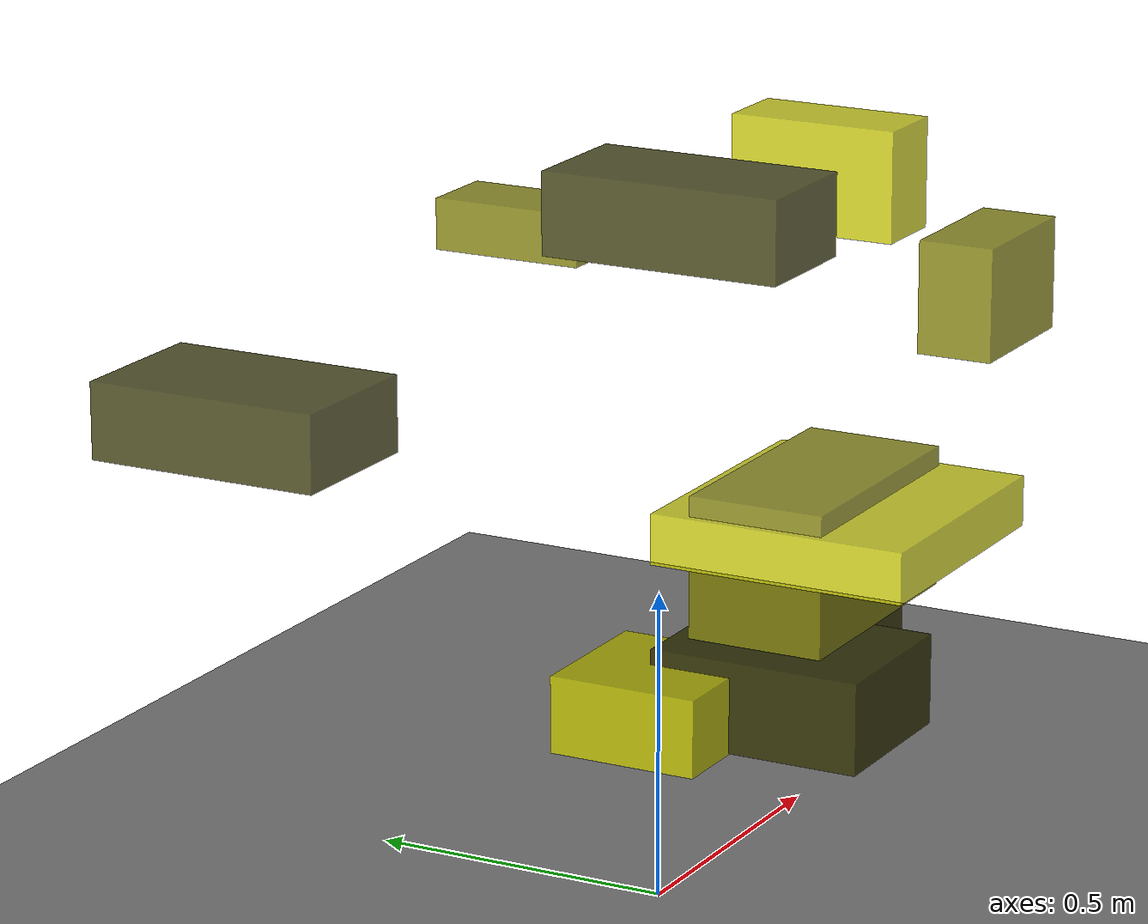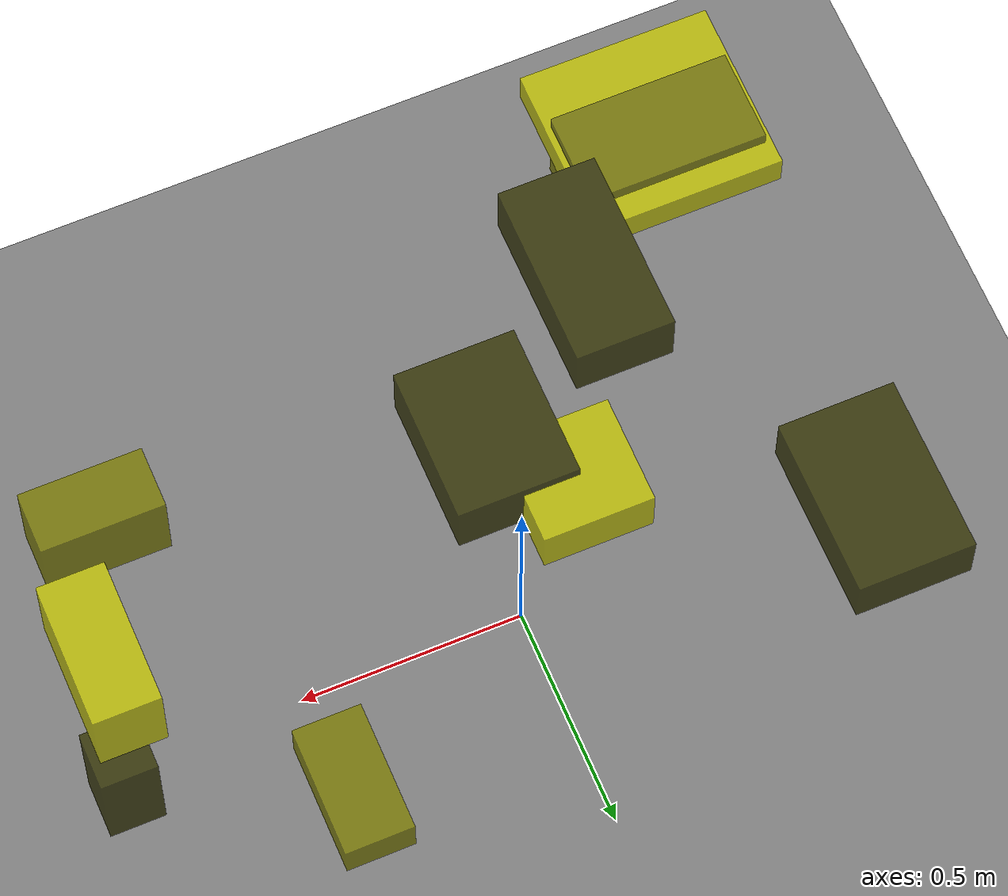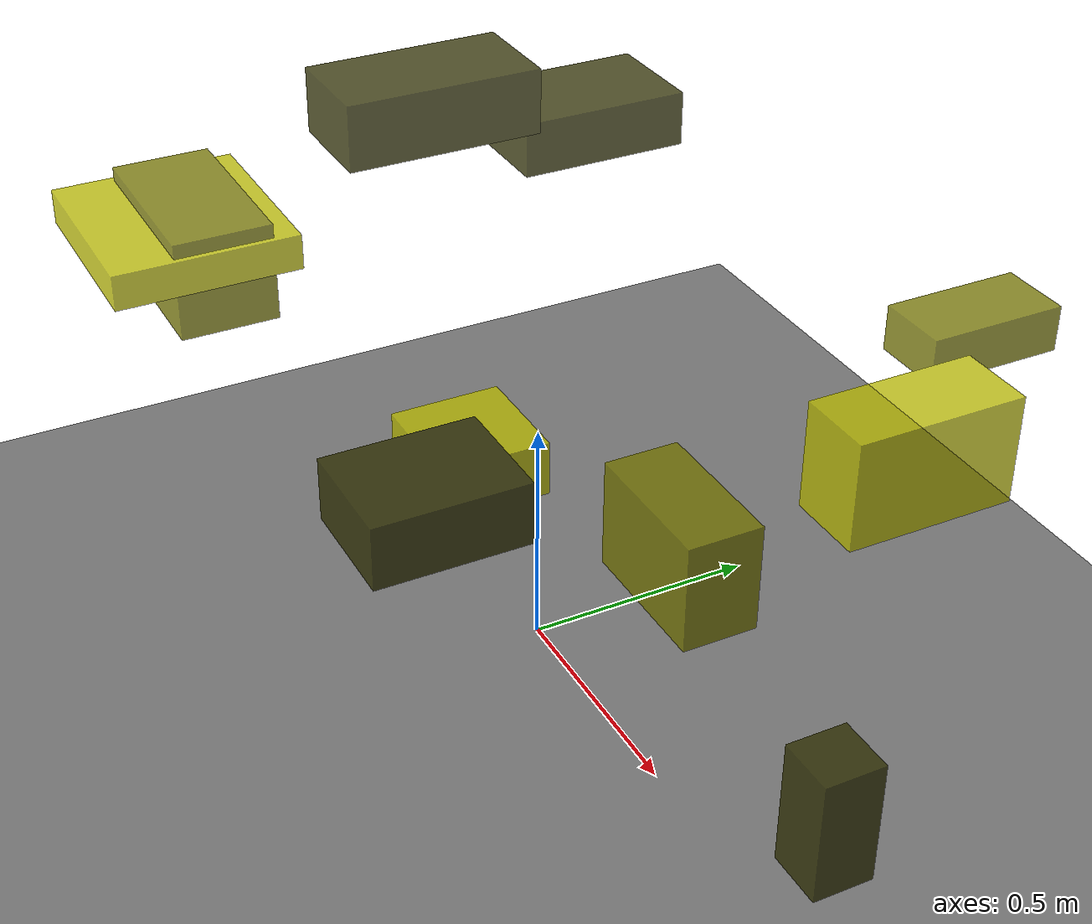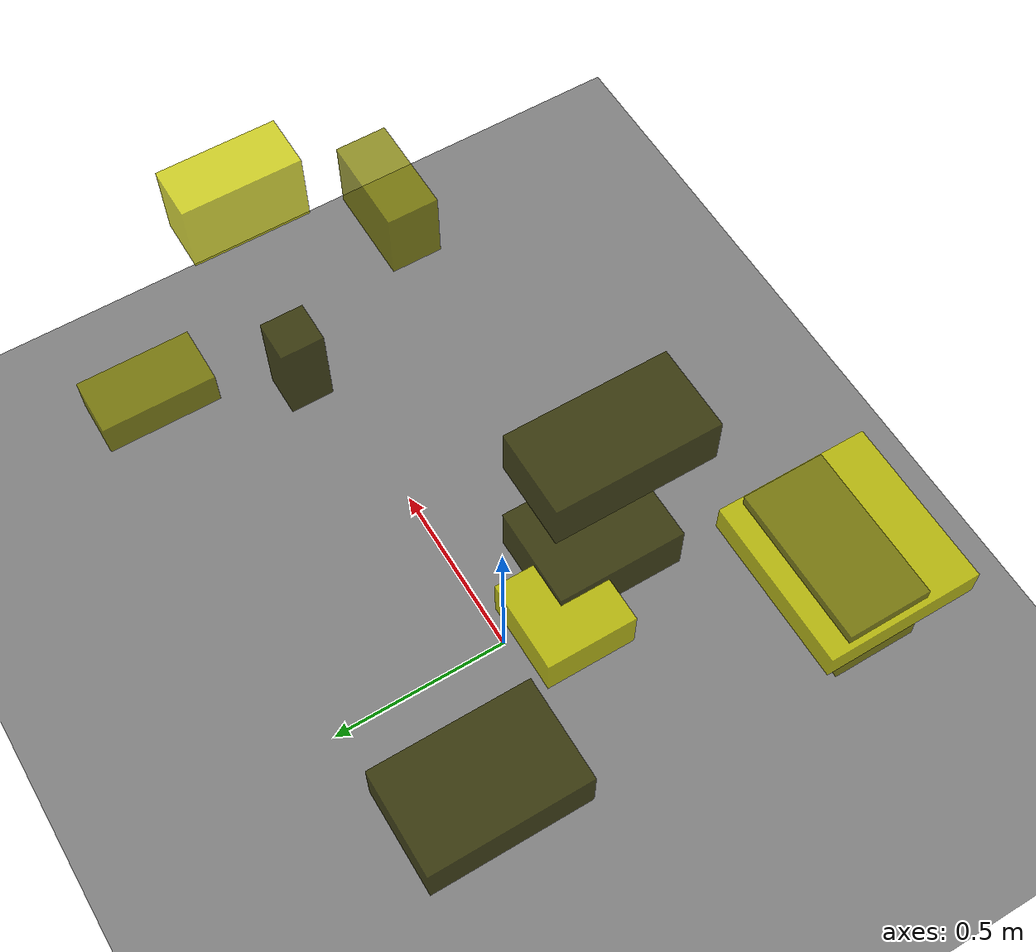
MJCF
<?xml version="1.0"?>
<mujoco model="obstacle_scene">
  <compiler angle="radian" coordinate="local"/>
  <option timestep="0.001" gravity="0 0 -9.81"/>

  <asset>
    <material name="obstacle_mat" rgba="0.8 0.8 0.0 0.8"/>
    <material name="ground_mat" rgba="0.5 0.5 0.5 1"/>
  </asset>

  <worldbody>
    <!-- Ground plane -->
    <geom name="ground" type="plane" size="3 3 0.1" material="ground_mat"/>

    <!-- Obstacles -->
    <body name="obstacle_0" pos="-0.189590 -0.144902 1.165757">
      <geom name="obs_0" type="box" size="0.100388 0.191724 0.064113" rgba="0.2 0.2 0.0 0.8"/>
    </body>
    <body name="obstacle_1" pos="0.583522 0.558394 0.897770">
      <geom name="obs_1" type="box" size="0.069964 0.134073 0.044183" rgba="0.5 0.5 0.0 0.8"/>
    </body>
    <body name="obstacle_2" pos="-0.154290 -0.079019 0.381984">
      <geom name="obs_2" type="box" size="0.122321 0.121331 0.061524" rgba="0.8 0.8 0.0 0.8"/>
    </body>
    <body name="obstacle_3" pos="-0.573576 0.389514 0.880336">
      <geom name="obs_3" type="box" size="0.122402 0.187960 0.059717" rgba="0.2 0.2 0.0 0.8"/>
    </body>
    <body name="obstacle_4" pos="0.827861 -0.178432 0.827237">
      <geom name="obs_4" type="box" size="0.128324 0.065330 0.095786" rgba="0.5 0.5 0.0 0.8"/>
    </body>
    <body name="obstacle_5" pos="-0.513040 -0.548414 0.844559">
      <geom name="obs_5" type="box" size="0.204575 0.189934 0.036808" rgba="0.8 0.8 0.0 0.8"/>
    </body>
    <body name="obstacle_6" pos="-0.022569 -0.238831 0.395046">
      <geom name="obs_6" type="box" size="0.134390 0.173093 0.072613" rgba="0.2 0.2 0.0 0.8"/>
    </body>
    <body name="obstacle_7" pos="-0.512336 -0.511515 0.807549">
      <geom name="obs_7" type="box" size="0.191061 0.100744 0.102849" rgba="0.5 0.5 0.0 0.8"/>
    </body>
    <body name="obstacle_8" pos="0.933269 0.164113 0.960582">
      <geom name="obs_8" type="box" size="0.068981 0.150433 0.096259" rgba="0.8 0.8 0.0 0.8"/>
    </body>
    <body name="obstacle_9" pos="0.921143 0.098071 0.220989">
      <geom name="obs_9" type="box" size="0.061206 0.062723 0.133314" rgba="0.2 0.2 0.0 0.8"/>
    </body>
  </worldbody>
</mujoco>
